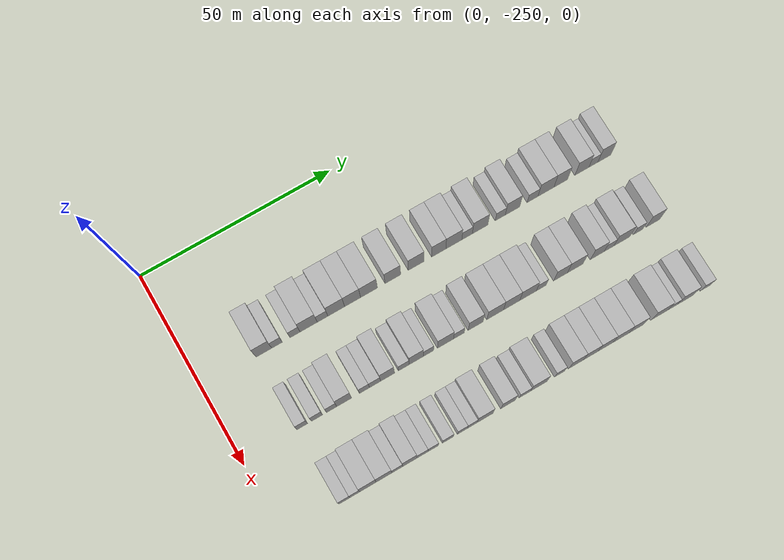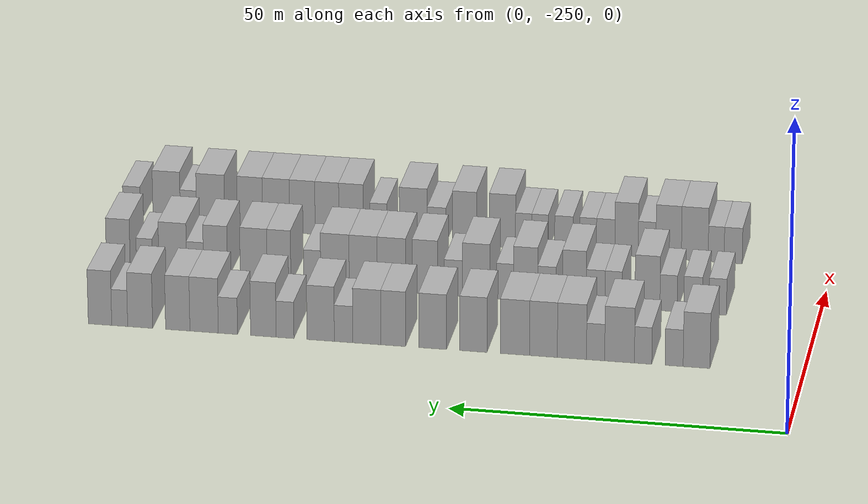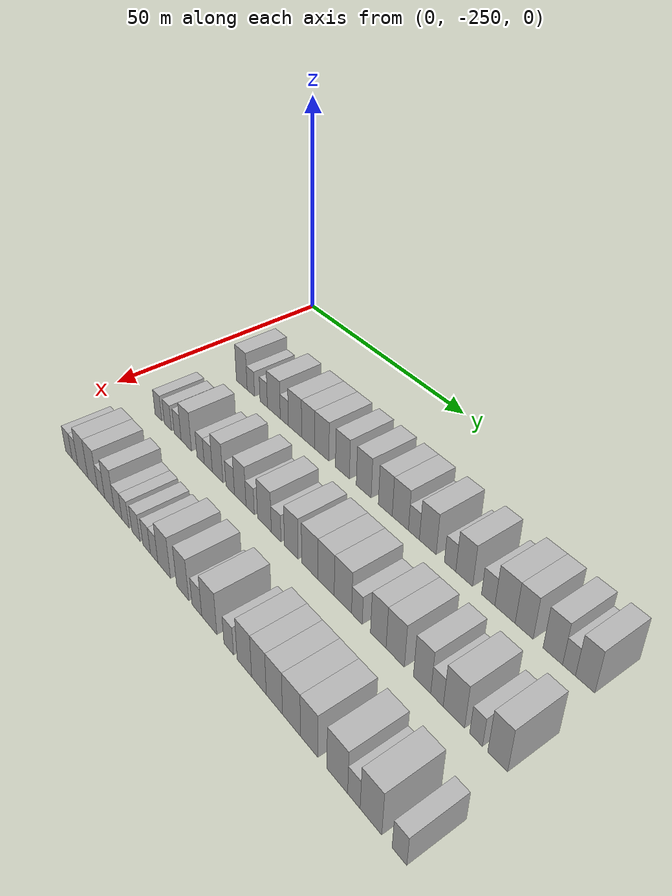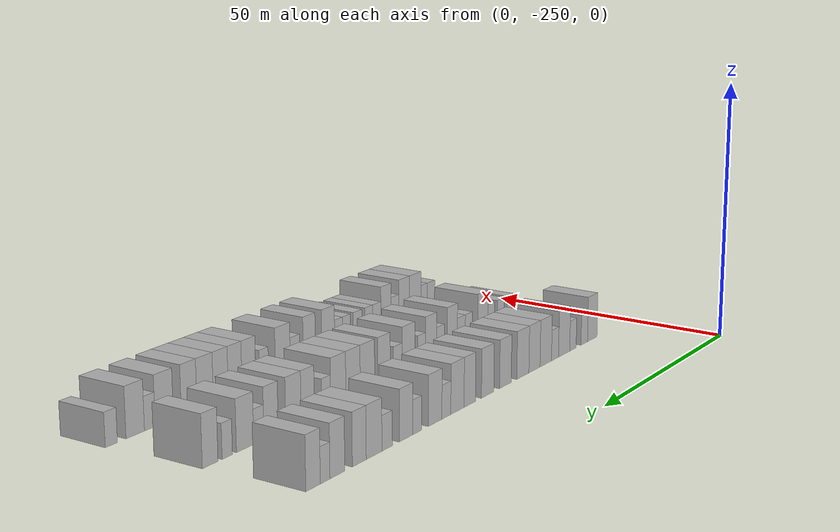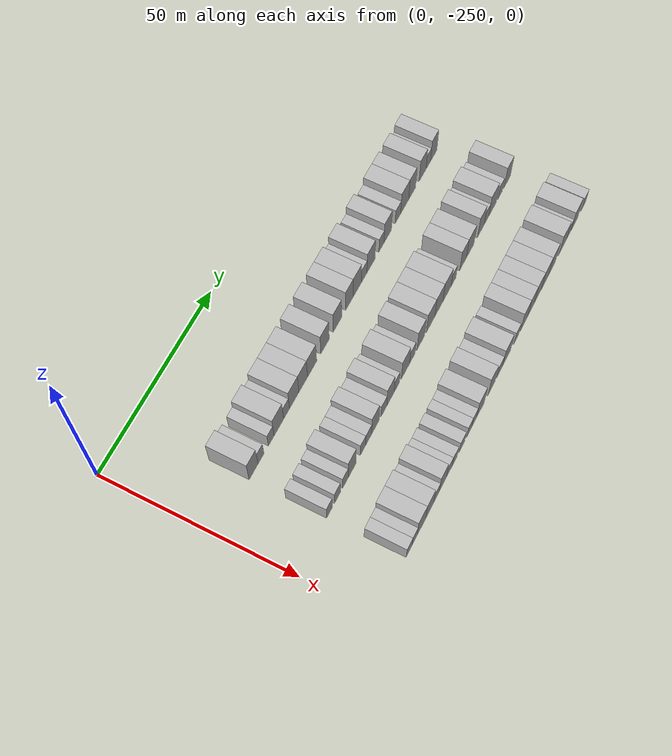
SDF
<sdf version="1.6">
 <world name="default">
  <model name="building_1">
   <static>1</static>
   <pose>25.0000 -233.9836 0 0.000000 0.000000 0.000000</pose>
   <link name="link">
    <pose>0 0 4.50 0 0 0</pose>
    <collision name="collision"><geometry><box><size>10.0000 4.0328 9.0000</size></box></geometry></collision>
    <visual name="visual">
     <cast_shadows>0</cast_shadows>
     <geometry><box><size>10.0000 4.0328 9.0000</size></box></geometry>
     <material>
      <script>
       <uri>model://HANNAS_wall/materials/scripts</uri>
       <uri>model://HANNAS_wall/materials/textures</uri>
       <name>vrc/HANNAS_wall</name>
      </script>
     </material>
    </visual>
   </link>
  </model>
  <model name="building_2">
   <static>1</static>
   <pose>25.0000 -230.6096 0 0.000000 0.000000 0.000000</pose>
   <link name="link">
    <pose>0 0 3.00 0 0 0</pose>
    <collision name="collision"><geometry><box><size>10.0000 2.7152 6.0000</size></box></geometry></collision>
    <visual name="visual">
     <cast_shadows>0</cast_shadows>
     <geometry><box><size>10.0000 2.7152 6.0000</size></box></geometry>
     <material>
      <script>
       <uri>model://HANNAS_wall/materials/scripts</uri>
       <uri>model://HANNAS_wall/materials/textures</uri>
       <name>vrc/HANNAS_wall</name>
      </script>
     </material>
    </visual>
   </link>
  </model>
  <model name="building_3">
   <static>1</static>
   <pose>25.0000 -225.9464 0 0.000000 0.000000 0.000000</pose>
   <link name="link">
    <pose>0 0 3.00 0 0 0</pose>
    <collision name="collision"><geometry><box><size>10.0000 2.6112 6.0000</size></box></geometry></collision>
    <visual name="visual">
     <cast_shadows>0</cast_shadows>
     <geometry><box><size>10.0000 2.6112 6.0000</size></box></geometry>
     <material>
      <script>
       <uri>model://HANNAS_wall/materials/scripts</uri>
       <uri>model://HANNAS_wall/materials/textures</uri>
       <name>vrc/HANNAS_wall</name>
      </script>
     </material>
    </visual>
   </link>
  </model>
  <model name="building_4">
   <static>1</static>
   <pose>25.0000 -222.4008 0 0.000000 0.000000 0.000000</pose>
   <link name="link">
    <pose>0 0 4.50 0 0 0</pose>
    <collision name="collision"><geometry><box><size>10.0000 4.4799 9.0000</size></box></geometry></collision>
    <visual name="visual">
     <cast_shadows>0</cast_shadows>
     <geometry><box><size>10.0000 4.4799 9.0000</size></box></geometry>
     <material>
      <script>
       <uri>model://HANNAS_wall/materials/scripts</uri>
       <uri>model://HANNAS_wall/materials/textures</uri>
       <name>vrc/HANNAS_wall</name>
      </script>
     </material>
    </visual>
   </link>
  </model>
  <model name="building_5">
   <static>1</static>
   <pose>25.0000 -218.7899 0 0.000000 0.000000 0.000000</pose>
   <link name="link">
    <pose>0 0 3.00 0 0 0</pose>
    <collision name="collision"><geometry><box><size>10.0000 2.7420 6.0000</size></box></geometry></collision>
    <visual name="visual">
     <cast_shadows>0</cast_shadows>
     <geometry><box><size>10.0000 2.7420 6.0000</size></box></geometry>
     <material>
      <script>
       <uri>model://HANNAS_wall/materials/scripts</uri>
       <uri>model://HANNAS_wall/materials/textures</uri>
       <name>vrc/HANNAS_wall</name>
      </script>
     </material>
    </visual>
   </link>
  </model>
  <model name="building_6">
   <static>1</static>
   <pose>25.0000 -215.2181 0 0.000000 0.000000 0.000000</pose>
   <link name="link">
    <pose>0 0 4.50 0 0 0</pose>
    <collision name="collision"><geometry><box><size>10.0000 4.4015 9.0000</size></box></geometry></collision>
    <visual name="visual">
     <cast_shadows>0</cast_shadows>
     <geometry><box><size>10.0000 4.4015 9.0000</size></box></geometry>
     <material>
      <script>
       <uri>model://HANNAS_wall/materials/scripts</uri>
       <uri>model://HANNAS_wall/materials/textures</uri>
       <name>vrc/HANNAS_wall</name>
      </script>
     </material>
    </visual>
   </link>
  </model>
  <model name="building_7">
   <static>1</static>
   <pose>25.0000 -210.9202 0 0.000000 0.000000 0.000000</pose>
   <link name="link">
    <pose>0 0 4.50 0 0 0</pose>
    <collision name="collision"><geometry><box><size>10.0000 4.1942 9.0000</size></box></geometry></collision>
    <visual name="visual">
     <cast_shadows>0</cast_shadows>
     <geometry><box><size>10.0000 4.1942 9.0000</size></box></geometry>
     <material>
      <script>
       <uri>model://HANNAS_wall/materials/scripts</uri>
       <uri>model://HANNAS_wall/materials/textures</uri>
       <name>vrc/HANNAS_wall</name>
      </script>
     </material>
    </visual>
   </link>
  </model>
  <model name="building_8">
   <static>1</static>
   <pose>25.0000 -206.6059 0 0.000000 0.000000 0.000000</pose>
   <link name="link">
    <pose>0 0 4.50 0 0 0</pose>
    <collision name="collision"><geometry><box><size>10.0000 4.4343 9.0000</size></box></geometry></collision>
    <visual name="visual">
     <cast_shadows>0</cast_shadows>
     <geometry><box><size>10.0000 4.4343 9.0000</size></box></geometry>
     <material>
      <script>
       <uri>model://HANNAS_wall/materials/scripts</uri>
       <uri>model://HANNAS_wall/materials/textures</uri>
       <name>vrc/HANNAS_wall</name>
      </script>
     </material>
    </visual>
   </link>
  </model>
  <model name="building_9">
   <static>1</static>
   <pose>25.0000 -200.3135 0 0.000000 0.000000 0.000000</pose>
   <link name="link">
    <pose>0 0 4.50 0 0 0</pose>
    <collision name="collision"><geometry><box><size>10.0000 4.1505 9.0000</size></box></geometry></collision>
    <visual name="visual">
     <cast_shadows>0</cast_shadows>
     <geometry><box><size>10.0000 4.1505 9.0000</size></box></geometry>
     <material>
      <script>
       <uri>model://HANNAS_wall/materials/scripts</uri>
       <uri>model://HANNAS_wall/materials/textures</uri>
       <name>vrc/HANNAS_wall</name>
      </script>
     </material>
    </visual>
   </link>
  </model>
  <model name="building_10">
   <static>1</static>
   <pose>25.0000 -194.1233 0 0.000000 0.000000 0.000000</pose>
   <link name="link">
    <pose>0 0 4.50 0 0 0</pose>
    <collision name="collision"><geometry><box><size>10.0000 4.2298 9.0000</size></box></geometry></collision>
    <visual name="visual">
     <cast_shadows>0</cast_shadows>
     <geometry><box><size>10.0000 4.2298 9.0000</size></box></geometry>
     <material>
      <script>
       <uri>model://HANNAS_wall/materials/scripts</uri>
       <uri>model://HANNAS_wall/materials/textures</uri>
       <name>vrc/HANNAS_wall</name>
      </script>
     </material>
    </visual>
   </link>
  </model>
  <model name="building_11">
   <static>1</static>
   <pose>25.0000 -188.1215 0 0.000000 0.000000 0.000000</pose>
   <link name="link">
    <pose>0 0 4.50 0 0 0</pose>
    <collision name="collision"><geometry><box><size>10.0000 3.7738 9.0000</size></box></geometry></collision>
    <visual name="visual">
     <cast_shadows>0</cast_shadows>
     <geometry><box><size>10.0000 3.7738 9.0000</size></box></geometry>
     <material>
      <script>
       <uri>model://HANNAS_wall/materials/scripts</uri>
       <uri>model://HANNAS_wall/materials/textures</uri>
       <name>vrc/HANNAS_wall</name>
      </script>
     </material>
    </visual>
   </link>
  </model>
  <model name="building_12">
   <static>1</static>
   <pose>25.0000 -184.0961 0 0.000000 0.000000 0.000000</pose>
   <link name="link">
    <pose>0 0 4.50 0 0 0</pose>
    <collision name="collision"><geometry><box><size>10.0000 4.2769 9.0000</size></box></geometry></collision>
    <visual name="visual">
     <cast_shadows>0</cast_shadows>
     <geometry><box><size>10.0000 4.2769 9.0000</size></box></geometry>
     <material>
      <script>
       <uri>model://HANNAS_wall/materials/scripts</uri>
       <uri>model://HANNAS_wall/materials/textures</uri>
       <name>vrc/HANNAS_wall</name>
      </script>
     </material>
    </visual>
   </link>
  </model>
  <model name="building_13">
   <static>1</static>
   <pose>25.0000 -180.5495 0 0.000000 0.000000 0.000000</pose>
   <link name="link">
    <pose>0 0 3.00 0 0 0</pose>
    <collision name="collision"><geometry><box><size>10.0000 2.8164 6.0000</size></box></geometry></collision>
    <visual name="visual">
     <cast_shadows>0</cast_shadows>
     <geometry><box><size>10.0000 2.8164 6.0000</size></box></geometry>
     <material>
      <script>
       <uri>model://HANNAS_wall/materials/scripts</uri>
       <uri>model://HANNAS_wall/materials/textures</uri>
       <name>vrc/HANNAS_wall</name>
      </script>
     </material>
    </visual>
   </link>
  </model>
  <model name="building_14">
   <static>1</static>
   <pose>25.0000 -177.0517 0 0.000000 0.000000 0.000000</pose>
   <link name="link">
    <pose>0 0 4.50 0 0 0</pose>
    <collision name="collision"><geometry><box><size>10.0000 4.1793 9.0000</size></box></geometry></collision>
    <visual name="visual">
     <cast_shadows>0</cast_shadows>
     <geometry><box><size>10.0000 4.1793 9.0000</size></box></geometry>
     <material>
      <script>
       <uri>model://HANNAS_wall/materials/scripts</uri>
       <uri>model://HANNAS_wall/materials/textures</uri>
       <name>vrc/HANNAS_wall</name>
      </script>
     </material>
    </visual>
   </link>
  </model>
  <model name="building_15">
   <static>1</static>
   <pose>25.0000 -171.6035 0 0.000000 0.000000 0.000000</pose>
   <link name="link">
    <pose>0 0 3.00 0 0 0</pose>
    <collision name="collision"><geometry><box><size>10.0000 2.7170 6.0000</size></box></geometry></collision>
    <visual name="visual">
     <cast_shadows>0</cast_shadows>
     <geometry><box><size>10.0000 2.7170 6.0000</size></box></geometry>
     <material>
      <script>
       <uri>model://HANNAS_wall/materials/scripts</uri>
       <uri>model://HANNAS_wall/materials/textures</uri>
       <name>vrc/HANNAS_wall</name>
      </script>
     </material>
    </visual>
   </link>
  </model>
  <model name="building_16">
   <static>1</static>
   <pose>25.0000 -168.2817 0 0.000000 0.000000 0.000000</pose>
   <link name="link">
    <pose>0 0 4.50 0 0 0</pose>
    <collision name="collision"><geometry><box><size>10.0000 3.9265 9.0000</size></box></geometry></collision>
    <visual name="visual">
     <cast_shadows>0</cast_shadows>
     <geometry><box><size>10.0000 3.9265 9.0000</size></box></geometry>
     <material>
      <script>
       <uri>model://HANNAS_wall/materials/scripts</uri>
       <uri>model://HANNAS_wall/materials/textures</uri>
       <name>vrc/HANNAS_wall</name>
      </script>
     </material>
    </visual>
   </link>
  </model>
  <model name="building_17">
   <static>1</static>
   <pose>25.0000 -162.8379 0 0.000000 0.000000 0.000000</pose>
   <link name="link">
    <pose>0 0 3.00 0 0 0</pose>
    <collision name="collision"><geometry><box><size>10.0000 2.9611 6.0000</size></box></geometry></collision>
    <visual name="visual">
     <cast_shadows>0</cast_shadows>
     <geometry><box><size>10.0000 2.9611 6.0000</size></box></geometry>
     <material>
      <script>
       <uri>model://HANNAS_wall/materials/scripts</uri>
       <uri>model://HANNAS_wall/materials/textures</uri>
       <name>vrc/HANNAS_wall</name>
      </script>
     </material>
    </visual>
   </link>
  </model>
  <model name="building_18">
   <static>1</static>
   <pose>25.0000 -159.1776 0 0.000000 0.000000 0.000000</pose>
   <link name="link">
    <pose>0 0 4.50 0 0 0</pose>
    <collision name="collision"><geometry><box><size>10.0000 4.3594 9.0000</size></box></geometry></collision>
    <visual name="visual">
     <cast_shadows>0</cast_shadows>
     <geometry><box><size>10.0000 4.3594 9.0000</size></box></geometry>
     <material>
      <script>
       <uri>model://HANNAS_wall/materials/scripts</uri>
       <uri>model://HANNAS_wall/materials/textures</uri>
       <name>vrc/HANNAS_wall</name>
      </script>
     </material>
    </visual>
   </link>
  </model>
  <model name="building_19">
   <static>1</static>
   <pose>25.0000 -155.1278 0 0.000000 0.000000 0.000000</pose>
   <link name="link">
    <pose>0 0 4.50 0 0 0</pose>
    <collision name="collision"><geometry><box><size>10.0000 3.7403 9.0000</size></box></geometry></collision>
    <visual name="visual">
     <cast_shadows>0</cast_shadows>
     <geometry><box><size>10.0000 3.7403 9.0000</size></box></geometry>
     <material>
      <script>
       <uri>model://HANNAS_wall/materials/scripts</uri>
       <uri>model://HANNAS_wall/materials/textures</uri>
       <name>vrc/HANNAS_wall</name>
      </script>
     </material>
    </visual>
   </link>
  </model>
  <model name="building_20">
   <static>1</static>
   <pose>25.0000 -149.3314 0 0.000000 0.000000 0.000000</pose>
   <link name="link">
    <pose>0 0 4.50 0 0 0</pose>
    <collision name="collision"><geometry><box><size>10.0000 3.8524 9.0000</size></box></geometry></collision>
    <visual name="visual">
     <cast_shadows>0</cast_shadows>
     <geometry><box><size>10.0000 3.8524 9.0000</size></box></geometry>
     <material>
      <script>
       <uri>model://HANNAS_wall/materials/scripts</uri>
       <uri>model://HANNAS_wall/materials/textures</uri>
       <name>vrc/HANNAS_wall</name>
      </script>
     </material>
    </visual>
   </link>
  </model>
  <model name="building_21">
   <static>1</static>
   <pose>25.0000 -146.1760 0 0.000000 0.000000 0.000000</pose>
   <link name="link">
    <pose>0 0 3.00 0 0 0</pose>
    <collision name="collision"><geometry><box><size>10.0000 2.4586 6.0000</size></box></geometry></collision>
    <visual name="visual">
     <cast_shadows>0</cast_shadows>
     <geometry><box><size>10.0000 2.4586 6.0000</size></box></geometry>
     <material>
      <script>
       <uri>model://HANNAS_wall/materials/scripts</uri>
       <uri>model://HANNAS_wall/materials/textures</uri>
       <name>vrc/HANNAS_wall</name>
      </script>
     </material>
    </visual>
   </link>
  </model>
  <model name="building_22">
   <static>1</static>
   <pose>25.0000 -143.1397 0 0.000000 0.000000 0.000000</pose>
   <link name="link">
    <pose>0 0 4.50 0 0 0</pose>
    <collision name="collision"><geometry><box><size>10.0000 3.6139 9.0000</size></box></geometry></collision>
    <visual name="visual">
     <cast_shadows>0</cast_shadows>
     <geometry><box><size>10.0000 3.6139 9.0000</size></box></geometry>
     <material>
      <script>
       <uri>model://HANNAS_wall/materials/scripts</uri>
       <uri>model://HANNAS_wall/materials/textures</uri>
       <name>vrc/HANNAS_wall</name>
      </script>
     </material>
    </visual>
   </link>
  </model>
  <model name="building_124">
   <static>1</static>
   <pose>44.0000 -234.6560 0 0.000000 0.000000 0.000000</pose>
   <link name="link">
    <pose>0 0 3.00 0 0 0</pose>
    <collision name="collision"><geometry><box><size>10.0000 2.6880 6.0000</size></box></geometry></collision>
    <visual name="visual">
     <cast_shadows>0</cast_shadows>
     <geometry><box><size>10.0000 2.6880 6.0000</size></box></geometry>
     <material>
      <script>
       <uri>model://HANNAS_wall/materials/scripts</uri>
       <uri>model://HANNAS_wall/materials/textures</uri>
       <name>vrc/HANNAS_wall</name>
      </script>
     </material>
    </visual>
   </link>
  </model>
  <model name="building_125">
   <static>1</static>
   <pose>44.0000 -230.8934 0 0.000000 0.000000 0.000000</pose>
   <link name="link">
    <pose>0 0 3.00 0 0 0</pose>
    <collision name="collision"><geometry><box><size>10.0000 2.8372 6.0000</size></box></geometry></collision>
    <visual name="visual">
     <cast_shadows>0</cast_shadows>
     <geometry><box><size>10.0000 2.8372 6.0000</size></box></geometry>
     <material>
      <script>
       <uri>model://HANNAS_wall/materials/scripts</uri>
       <uri>model://HANNAS_wall/materials/textures</uri>
       <name>vrc/HANNAS_wall</name>
      </script>
     </material>
    </visual>
   </link>
  </model>
  <model name="building_126">
   <static>1</static>
   <pose>44.0000 -227.1511 0 0.000000 0.000000 0.000000</pose>
   <link name="link">
    <pose>0 0 3.00 0 0 0</pose>
    <collision name="collision"><geometry><box><size>10.0000 2.6474 6.0000</size></box></geometry></collision>
    <visual name="visual">
     <cast_shadows>0</cast_shadows>
     <geometry><box><size>10.0000 2.6474 6.0000</size></box></geometry>
     <material>
      <script>
       <uri>model://HANNAS_wall/materials/scripts</uri>
       <uri>model://HANNAS_wall/materials/textures</uri>
       <name>vrc/HANNAS_wall</name>
      </script>
     </material>
    </visual>
   </link>
  </model>
  <model name="building_127">
   <static>1</static>
   <pose>44.0000 -223.9081 0 0.000000 0.000000 0.000000</pose>
   <link name="link">
    <pose>0 0 4.50 0 0 0</pose>
    <collision name="collision"><geometry><box><size>10.0000 3.8386 9.0000</size></box></geometry></collision>
    <visual name="visual">
     <cast_shadows>0</cast_shadows>
     <geometry><box><size>10.0000 3.8386 9.0000</size></box></geometry>
     <material>
      <script>
       <uri>model://HANNAS_wall/materials/scripts</uri>
       <uri>model://HANNAS_wall/materials/textures</uri>
       <name>vrc/HANNAS_wall</name>
      </script>
     </material>
    </visual>
   </link>
  </model>
  <model name="building_128">
   <static>1</static>
   <pose>44.0000 -218.6937 0 0.000000 0.000000 0.000000</pose>
   <link name="link">
    <pose>0 0 3.00 0 0 0</pose>
    <collision name="collision"><geometry><box><size>10.0000 2.5903 6.0000</size></box></geometry></collision>
    <visual name="visual">
     <cast_shadows>0</cast_shadows>
     <geometry><box><size>10.0000 2.5903 6.0000</size></box></geometry>
     <material>
      <script>
       <uri>model://HANNAS_wall/materials/scripts</uri>
       <uri>model://HANNAS_wall/materials/textures</uri>
       <name>vrc/HANNAS_wall</name>
      </script>
     </material>
    </visual>
   </link>
  </model>
  <model name="building_129">
   <static>1</static>
   <pose>44.0000 -215.9642 0 0.000000 0.000000 0.000000</pose>
   <link name="link">
    <pose>0 0 3.00 0 0 0</pose>
    <collision name="collision"><geometry><box><size>10.0000 2.8687 6.0000</size></box></geometry></collision>
    <visual name="visual">
     <cast_shadows>0</cast_shadows>
     <geometry><box><size>10.0000 2.8687 6.0000</size></box></geometry>
     <material>
      <script>
       <uri>model://HANNAS_wall/materials/scripts</uri>
       <uri>model://HANNAS_wall/materials/textures</uri>
       <name>vrc/HANNAS_wall</name>
      </script>
     </material>
    </visual>
   </link>
  </model>
  <model name="building_130">
   <static>1</static>
   <pose>44.0000 -212.7077 0 0.000000 0.000000 0.000000</pose>
   <link name="link">
    <pose>0 0 4.50 0 0 0</pose>
    <collision name="collision"><geometry><box><size>10.0000 3.6442 9.0000</size></box></geometry></collision>
    <visual name="visual">
     <cast_shadows>0</cast_shadows>
     <geometry><box><size>10.0000 3.6442 9.0000</size></box></geometry>
     <material>
      <script>
       <uri>model://HANNAS_wall/materials/scripts</uri>
       <uri>model://HANNAS_wall/materials/textures</uri>
       <name>vrc/HANNAS_wall</name>
      </script>
     </material>
    </visual>
   </link>
  </model>
  <model name="building_131">
   <static>1</static>
   <pose>44.0000 -208.4676 0 0.000000 0.000000 0.000000</pose>
   <link name="link">
    <pose>0 0 3.00 0 0 0</pose>
    <collision name="collision"><geometry><box><size>10.0000 2.8359 6.0000</size></box></geometry></collision>
    <visual name="visual">
     <cast_shadows>0</cast_shadows>
     <geometry><box><size>10.0000 2.8359 6.0000</size></box></geometry>
     <material>
      <script>
       <uri>model://HANNAS_wall/materials/scripts</uri>
       <uri>model://HANNAS_wall/materials/textures</uri>
       <name>vrc/HANNAS_wall</name>
      </script>
     </material>
    </visual>
   </link>
  </model>
  <model name="building_132">
   <static>1</static>
   <pose>44.0000 -205.1764 0 0.000000 0.000000 0.000000</pose>
   <link name="link">
    <pose>0 0 4.50 0 0 0</pose>
    <collision name="collision"><geometry><box><size>10.0000 3.7465 9.0000</size></box></geometry></collision>
    <visual name="visual">
     <cast_shadows>0</cast_shadows>
     <geometry><box><size>10.0000 3.7465 9.0000</size></box></geometry>
     <material>
      <script>
       <uri>model://HANNAS_wall/materials/scripts</uri>
       <uri>model://HANNAS_wall/materials/textures</uri>
       <name>vrc/HANNAS_wall</name>
      </script>
     </material>
    </visual>
   </link>
  </model>
  <model name="building_133">
   <static>1</static>
   <pose>44.0000 -201.9931 0 0.000000 0.000000 0.000000</pose>
   <link name="link">
    <pose>0 0 3.00 0 0 0</pose>
    <collision name="collision"><geometry><box><size>10.0000 2.6202 6.0000</size></box></geometry></collision>
    <visual name="visual">
     <cast_shadows>0</cast_shadows>
     <geometry><box><size>10.0000 2.6202 6.0000</size></box></geometry>
     <material>
      <script>
       <uri>model://HANNAS_wall/materials/scripts</uri>
       <uri>model://HANNAS_wall/materials/textures</uri>
       <name>vrc/HANNAS_wall</name>
      </script>
     </material>
    </visual>
   </link>
  </model>
  <model name="building_134">
   <static>1</static>
   <pose>44.0000 -197.5718 0 0.000000 0.000000 0.000000</pose>
   <link name="link">
    <pose>0 0 4.50 0 0 0</pose>
    <collision name="collision"><geometry><box><size>10.0000 4.2224 9.0000</size></box></geometry></collision>
    <visual name="visual">
     <cast_shadows>0</cast_shadows>
     <geometry><box><size>10.0000 4.2224 9.0000</size></box></geometry>
     <material>
      <script>
       <uri>model://HANNAS_wall/materials/scripts</uri>
       <uri>model://HANNAS_wall/materials/textures</uri>
       <name>vrc/HANNAS_wall</name>
      </script>
     </material>
    </visual>
   </link>
  </model>
  <model name="building_135">
   <static>1</static>
   <pose>44.0000 -194.0302 0 0.000000 0.000000 0.000000</pose>
   <link name="link">
    <pose>0 0 3.00 0 0 0</pose>
    <collision name="collision"><geometry><box><size>10.0000 2.8608 6.0000</size></box></geometry></collision>
    <visual name="visual">
     <cast_shadows>0</cast_shadows>
     <geometry><box><size>10.0000 2.8608 6.0000</size></box></geometry>
     <material>
      <script>
       <uri>model://HANNAS_wall/materials/scripts</uri>
       <uri>model://HANNAS_wall/materials/textures</uri>
       <name>vrc/HANNAS_wall</name>
      </script>
     </material>
    </visual>
   </link>
  </model>
  <model name="building_136">
   <static>1</static>
   <pose>44.0000 -189.6367 0 0.000000 0.000000 0.000000</pose>
   <link name="link">
    <pose>0 0 4.50 0 0 0</pose>
    <collision name="collision"><geometry><box><size>10.0000 3.9262 9.0000</size></box></geometry></collision>
    <visual name="visual">
     <cast_shadows>0</cast_shadows>
     <geometry><box><size>10.0000 3.9262 9.0000</size></box></geometry>
     <material>
      <script>
       <uri>model://HANNAS_wall/materials/scripts</uri>
       <uri>model://HANNAS_wall/materials/textures</uri>
       <name>vrc/HANNAS_wall</name>
      </script>
     </material>
    </visual>
   </link>
  </model>
  <model name="building_137">
   <static>1</static>
   <pose>44.0000 -184.4446 0 0.000000 0.000000 0.000000</pose>
   <link name="link">
    <pose>0 0 4.50 0 0 0</pose>
    <collision name="collision"><geometry><box><size>10.0000 4.4580 9.0000</size></box></geometry></collision>
    <visual name="visual">
     <cast_shadows>0</cast_shadows>
     <geometry><box><size>10.0000 4.4580 9.0000</size></box></geometry>
     <material>
      <script>
       <uri>model://HANNAS_wall/materials/scripts</uri>
       <uri>model://HANNAS_wall/materials/textures</uri>
       <name>vrc/HANNAS_wall</name>
      </script>
     </material>
    </visual>
   </link>
  </model>
  <model name="building_138">
   <static>1</static>
   <pose>44.0000 -180.0533 0 0.000000 0.000000 0.000000</pose>
   <link name="link">
    <pose>0 0 4.50 0 0 0</pose>
    <collision name="collision"><geometry><box><size>10.0000 4.3246 9.0000</size></box></geometry></collision>
    <visual name="visual">
     <cast_shadows>0</cast_shadows>
     <geometry><box><size>10.0000 4.3246 9.0000</size></box></geometry>
     <material>
      <script>
       <uri>model://HANNAS_wall/materials/scripts</uri>
       <uri>model://HANNAS_wall/materials/textures</uri>
       <name>vrc/HANNAS_wall</name>
      </script>
     </material>
    </visual>
   </link>
  </model>
  <model name="building_139">
   <static>1</static>
   <pose>44.0000 -175.6700 0 0.000000 0.000000 0.000000</pose>
   <link name="link">
    <pose>0 0 4.50 0 0 0</pose>
    <collision name="collision"><geometry><box><size>10.0000 4.4419 9.0000</size></box></geometry></collision>
    <visual name="visual">
     <cast_shadows>0</cast_shadows>
     <geometry><box><size>10.0000 4.4419 9.0000</size></box></geometry>
     <material>
      <script>
       <uri>model://HANNAS_wall/materials/scripts</uri>
       <uri>model://HANNAS_wall/materials/textures</uri>
       <name>vrc/HANNAS_wall</name>
      </script>
     </material>
    </visual>
   </link>
  </model>
  <model name="building_140">
   <static>1</static>
   <pose>44.0000 -172.1251 0 0.000000 0.000000 0.000000</pose>
   <link name="link">
    <pose>0 0 3.00 0 0 0</pose>
    <collision name="collision"><geometry><box><size>10.0000 2.6479 6.0000</size></box></geometry></collision>
    <visual name="visual">
     <cast_shadows>0</cast_shadows>
     <geometry><box><size>10.0000 2.6479 6.0000</size></box></geometry>
     <material>
      <script>
       <uri>model://HANNAS_wall/materials/scripts</uri>
       <uri>model://HANNAS_wall/materials/textures</uri>
       <name>vrc/HANNAS_wall</name>
      </script>
     </material>
    </visual>
   </link>
  </model>
  <model name="building_141">
   <static>1</static>
   <pose>44.0000 -166.9537 0 0.000000 0.000000 0.000000</pose>
   <link name="link">
    <pose>0 0 4.50 0 0 0</pose>
    <collision name="collision"><geometry><box><size>10.0000 3.6950 9.0000</size></box></geometry></collision>
    <visual name="visual">
     <cast_shadows>0</cast_shadows>
     <geometry><box><size>10.0000 3.6950 9.0000</size></box></geometry>
     <material>
      <script>
       <uri>model://HANNAS_wall/materials/scripts</uri>
       <uri>model://HANNAS_wall/materials/textures</uri>
       <name>vrc/HANNAS_wall</name>
      </script>
     </material>
    </visual>
   </link>
  </model>
  <model name="building_142">
   <static>1</static>
   <pose>44.0000 -163.0066 0 0.000000 0.000000 0.000000</pose>
   <link name="link">
    <pose>0 0 4.50 0 0 0</pose>
    <collision name="collision"><geometry><box><size>10.0000 4.1993 9.0000</size></box></geometry></collision>
    <visual name="visual">
     <cast_shadows>0</cast_shadows>
     <geometry><box><size>10.0000 4.1993 9.0000</size></box></geometry>
     <material>
      <script>
       <uri>model://HANNAS_wall/materials/scripts</uri>
       <uri>model://HANNAS_wall/materials/textures</uri>
       <name>vrc/HANNAS_wall</name>
      </script>
     </material>
    </visual>
   </link>
  </model>
  <model name="building_143">
   <static>1</static>
   <pose>44.0000 -157.0333 0 0.000000 0.000000 0.000000</pose>
   <link name="link">
    <pose>0 0 4.50 0 0 0</pose>
    <collision name="collision"><geometry><box><size>10.0000 3.7471 9.0000</size></box></geometry></collision>
    <visual name="visual">
     <cast_shadows>0</cast_shadows>
     <geometry><box><size>10.0000 3.7471 9.0000</size></box></geometry>
     <material>
      <script>
       <uri>model://HANNAS_wall/materials/scripts</uri>
       <uri>model://HANNAS_wall/materials/textures</uri>
       <name>vrc/HANNAS_wall</name>
      </script>
     </material>
    </visual>
   </link>
  </model>
  <model name="building_144">
   <static>1</static>
   <pose>44.0000 -153.8432 0 0.000000 0.000000 0.000000</pose>
   <link name="link">
    <pose>0 0 3.00 0 0 0</pose>
    <collision name="collision"><geometry><box><size>10.0000 2.6332 6.0000</size></box></geometry></collision>
    <visual name="visual">
     <cast_shadows>0</cast_shadows>
     <geometry><box><size>10.0000 2.6332 6.0000</size></box></geometry>
     <material>
      <script>
       <uri>model://HANNAS_wall/materials/scripts</uri>
       <uri>model://HANNAS_wall/materials/textures</uri>
       <name>vrc/HANNAS_wall</name>
      </script>
     </material>
    </visual>
   </link>
  </model>
  <model name="building_145">
   <static>1</static>
   <pose>44.0000 -150.3522 0 0.000000 0.000000 0.000000</pose>
   <link name="link">
    <pose>0 0 4.50 0 0 0</pose>
    <collision name="collision"><geometry><box><size>10.0000 4.3489 9.0000</size></box></geometry></collision>
    <visual name="visual">
     <cast_shadows>0</cast_shadows>
     <geometry><box><size>10.0000 4.3489 9.0000</size></box></geometry>
     <material>
      <script>
       <uri>model://HANNAS_wall/materials/scripts</uri>
       <uri>model://HANNAS_wall/materials/textures</uri>
       <name>vrc/HANNAS_wall</name>
      </script>
     </material>
    </visual>
   </link>
  </model>
  <model name="building_146">
   <static>1</static>
   <pose>44.0000 -145.9190 0 0.000000 0.000000 0.000000</pose>
   <link name="link">
    <pose>0 0 3.00 0 0 0</pose>
    <collision name="collision"><geometry><box><size>10.0000 2.5176 6.0000</size></box></geometry></collision>
    <visual name="visual">
     <cast_shadows>0</cast_shadows>
     <geometry><box><size>10.0000 2.5176 6.0000</size></box></geometry>
     <material>
      <script>
       <uri>model://HANNAS_wall/materials/scripts</uri>
       <uri>model://HANNAS_wall/materials/textures</uri>
       <name>vrc/HANNAS_wall</name>
      </script>
     </material>
    </visual>
   </link>
  </model>
  <model name="building_147">
   <static>1</static>
   <pose>44.0000 -141.7962 0 0.000000 0.000000 0.000000</pose>
   <link name="link">
    <pose>0 0 4.50 0 0 0</pose>
    <collision name="collision"><geometry><box><size>10.0000 3.7279 9.0000</size></box></geometry></collision>
    <visual name="visual">
     <cast_shadows>0</cast_shadows>
     <geometry><box><size>10.0000 3.7279 9.0000</size></box></geometry>
     <material>
      <script>
       <uri>model://HANNAS_wall/materials/scripts</uri>
       <uri>model://HANNAS_wall/materials/textures</uri>
       <name>vrc/HANNAS_wall</name>
      </script>
     </material>
    </visual>
   </link>
  </model>
  <model name="building_245">
   <static>1</static>
   <pose>63.0000 -234.5922 0 0.000000 0.000000 0.000000</pose>
   <link name="link">
    <pose>0 0 3.00 0 0 0</pose>
    <collision name="collision"><geometry><box><size>10.0000 2.8156 6.0000</size></box></geometry></collision>
    <visual name="visual">
     <cast_shadows>0</cast_shadows>
     <geometry><box><size>10.0000 2.8156 6.0000</size></box></geometry>
     <material>
      <script>
       <uri>model://HANNAS_wall/materials/scripts</uri>
       <uri>model://HANNAS_wall/materials/textures</uri>
       <name>vrc/HANNAS_wall</name>
      </script>
     </material>
    </visual>
   </link>
  </model>
  <model name="building_246">
   <static>1</static>
   <pose>63.0000 -231.9451 0 0.000000 0.000000 0.000000</pose>
   <link name="link">
    <pose>0 0 3.00 0 0 0</pose>
    <collision name="collision"><geometry><box><size>10.0000 2.4787 6.0000</size></box></geometry></collision>
    <visual name="visual">
     <cast_shadows>0</cast_shadows>
     <geometry><box><size>10.0000 2.4787 6.0000</size></box></geometry>
     <material>
      <script>
       <uri>model://HANNAS_wall/materials/scripts</uri>
       <uri>model://HANNAS_wall/materials/textures</uri>
       <name>vrc/HANNAS_wall</name>
      </script>
     </material>
    </visual>
   </link>
  </model>
  <model name="building_247">
   <static>1</static>
   <pose>63.0000 -228.6180 0 0.000000 0.000000 0.000000</pose>
   <link name="link">
    <pose>0 0 4.50 0 0 0</pose>
    <collision name="collision"><geometry><box><size>10.0000 4.1755 9.0000</size></box></geometry></collision>
    <visual name="visual">
     <cast_shadows>0</cast_shadows>
     <geometry><box><size>10.0000 4.1755 9.0000</size></box></geometry>
     <material>
      <script>
       <uri>model://HANNAS_wall/materials/scripts</uri>
       <uri>model://HANNAS_wall/materials/textures</uri>
       <name>vrc/HANNAS_wall</name>
      </script>
     </material>
    </visual>
   </link>
  </model>
  <model name="building_248">
   <static>1</static>
   <pose>63.0000 -224.5358 0 0.000000 0.000000 0.000000</pose>
   <link name="link">
    <pose>0 0 4.50 0 0 0</pose>
    <collision name="collision"><geometry><box><size>10.0000 3.9888 9.0000</size></box></geometry></collision>
    <visual name="visual">
     <cast_shadows>0</cast_shadows>
     <geometry><box><size>10.0000 3.9888 9.0000</size></box></geometry>
     <material>
      <script>
       <uri>model://HANNAS_wall/materials/scripts</uri>
       <uri>model://HANNAS_wall/materials/textures</uri>
       <name>vrc/HANNAS_wall</name>
      </script>
     </material>
    </visual>
   </link>
  </model>
  <model name="building_249">
   <static>1</static>
   <pose>63.0000 -221.1683 0 0.000000 0.000000 0.000000</pose>
   <link name="link">
    <pose>0 0 3.00 0 0 0</pose>
    <collision name="collision"><geometry><box><size>10.0000 2.7462 6.0000</size></box></geometry></collision>
    <visual name="visual">
     <cast_shadows>0</cast_shadows>
     <geometry><box><size>10.0000 2.7462 6.0000</size></box></geometry>
     <material>
      <script>
       <uri>model://HANNAS_wall/materials/scripts</uri>
       <uri>model://HANNAS_wall/materials/textures</uri>
       <name>vrc/HANNAS_wall</name>
      </script>
     </material>
    </visual>
   </link>
  </model>
  <model name="building_250">
   <static>1</static>
   <pose>63.0000 -217.9680 0 0.000000 0.000000 0.000000</pose>
   <link name="link">
    <pose>0 0 4.50 0 0 0</pose>
    <collision name="collision"><geometry><box><size>10.0000 3.6543 9.0000</size></box></geometry></collision>
    <visual name="visual">
     <cast_shadows>0</cast_shadows>
     <geometry><box><size>10.0000 3.6543 9.0000</size></box></geometry>
     <material>
      <script>
       <uri>model://HANNAS_wall/materials/scripts</uri>
       <uri>model://HANNAS_wall/materials/textures</uri>
       <name>vrc/HANNAS_wall</name>
      </script>
     </material>
    </visual>
   </link>
  </model>
  <model name="building_251">
   <static>1</static>
   <pose>63.0000 -214.7028 0 0.000000 0.000000 0.000000</pose>
   <link name="link">
    <pose>0 0 3.00 0 0 0</pose>
    <collision name="collision"><geometry><box><size>10.0000 2.8761 6.0000</size></box></geometry></collision>
    <visual name="visual">
     <cast_shadows>0</cast_shadows>
     <geometry><box><size>10.0000 2.8761 6.0000</size></box></geometry>
     <material>
      <script>
       <uri>model://HANNAS_wall/materials/scripts</uri>
       <uri>model://HANNAS_wall/materials/textures</uri>
       <name>vrc/HANNAS_wall</name>
      </script>
     </material>
    </visual>
   </link>
  </model>
  <model name="building_252">
   <static>1</static>
   <pose>63.0000 -211.9359 0 0.000000 0.000000 0.000000</pose>
   <link name="link">
    <pose>0 0 3.00 0 0 0</pose>
    <collision name="collision"><geometry><box><size>10.0000 2.6578 6.0000</size></box></geometry></collision>
    <visual name="visual">
     <cast_shadows>0</cast_shadows>
     <geometry><box><size>10.0000 2.6578 6.0000</size></box></geometry>
     <material>
      <script>
       <uri>model://HANNAS_wall/materials/scripts</uri>
       <uri>model://HANNAS_wall/materials/textures</uri>
       <name>vrc/HANNAS_wall</name>
      </script>
     </material>
    </visual>
   </link>
  </model>
  <model name="building_253">
   <static>1</static>
   <pose>63.0000 -208.1619 0 0.000000 0.000000 0.000000</pose>
   <link name="link">
    <pose>0 0 3.00 0 0 0</pose>
    <collision name="collision"><geometry><box><size>10.0000 2.8901 6.0000</size></box></geometry></collision>
    <visual name="visual">
     <cast_shadows>0</cast_shadows>
     <geometry><box><size>10.0000 2.8901 6.0000</size></box></geometry>
     <material>
      <script>
       <uri>model://HANNAS_wall/materials/scripts</uri>
       <uri>model://HANNAS_wall/materials/textures</uri>
       <name>vrc/HANNAS_wall</name>
      </script>
     </material>
    </visual>
   </link>
  </model>
  <model name="building_254">
   <static>1</static>
   <pose>63.0000 -204.4173 0 0.000000 0.000000 0.000000</pose>
   <link name="link">
    <pose>0 0 3.00 0 0 0</pose>
    <collision name="collision"><geometry><box><size>10.0000 2.5990 6.0000</size></box></geometry></collision>
    <visual name="visual">
     <cast_shadows>0</cast_shadows>
     <geometry><box><size>10.0000 2.5990 6.0000</size></box></geometry>
     <material>
      <script>
       <uri>model://HANNAS_wall/materials/scripts</uri>
       <uri>model://HANNAS_wall/materials/textures</uri>
       <name>vrc/HANNAS_wall</name>
      </script>
     </material>
    </visual>
   </link>
  </model>
  <model name="building_255">
   <static>1</static>
   <pose>63.0000 -201.8491 0 0.000000 0.000000 0.000000</pose>
   <link name="link">
    <pose>0 0 3.00 0 0 0</pose>
    <collision name="collision"><geometry><box><size>10.0000 2.5374 6.0000</size></box></geometry></collision>
    <visual name="visual">
     <cast_shadows>0</cast_shadows>
     <geometry><box><size>10.0000 2.5374 6.0000</size></box></geometry>
     <material>
      <script>
       <uri>model://HANNAS_wall/materials/scripts</uri>
       <uri>model://HANNAS_wall/materials/textures</uri>
       <name>vrc/HANNAS_wall</name>
      </script>
     </material>
    </visual>
   </link>
  </model>
  <model name="building_256">
   <static>1</static>
   <pose>63.0000 -198.5160 0 0.000000 0.000000 0.000000</pose>
   <link name="link">
    <pose>0 0 4.50 0 0 0</pose>
    <collision name="collision"><geometry><box><size>10.0000 4.1288 9.0000</size></box></geometry></collision>
    <visual name="visual">
     <cast_shadows>0</cast_shadows>
     <geometry><box><size>10.0000 4.1288 9.0000</size></box></geometry>
     <material>
      <script>
       <uri>model://HANNAS_wall/materials/scripts</uri>
       <uri>model://HANNAS_wall/materials/textures</uri>
       <name>vrc/HANNAS_wall</name>
      </script>
     </material>
    </visual>
   </link>
  </model>
  <model name="building_257">
   <static>1</static>
   <pose>63.0000 -192.5543 0 0.000000 0.000000 0.000000</pose>
   <link name="link">
    <pose>0 0 4.50 0 0 0</pose>
    <collision name="collision"><geometry><box><size>10.0000 3.7947 9.0000</size></box></geometry></collision>
    <visual name="visual">
     <cast_shadows>0</cast_shadows>
     <geometry><box><size>10.0000 3.7947 9.0000</size></box></geometry>
     <material>
      <script>
       <uri>model://HANNAS_wall/materials/scripts</uri>
       <uri>model://HANNAS_wall/materials/textures</uri>
       <name>vrc/HANNAS_wall</name>
      </script>
     </material>
    </visual>
   </link>
  </model>
  <model name="building_258">
   <static>1</static>
   <pose>63.0000 -188.1837 0 0.000000 0.000000 0.000000</pose>
   <link name="link">
    <pose>0 0 3.00 0 0 0</pose>
    <collision name="collision"><geometry><box><size>10.0000 2.9464 6.0000</size></box></geometry></collision>
    <visual name="visual">
     <cast_shadows>0</cast_shadows>
     <geometry><box><size>10.0000 2.9464 6.0000</size></box></geometry>
     <material>
      <script>
       <uri>model://HANNAS_wall/materials/scripts</uri>
       <uri>model://HANNAS_wall/materials/textures</uri>
       <name>vrc/HANNAS_wall</name>
      </script>
     </material>
    </visual>
   </link>
  </model>
  <model name="building_259">
   <static>1</static>
   <pose>63.0000 -184.5043 0 0.000000 0.000000 0.000000</pose>
   <link name="link">
    <pose>0 0 4.50 0 0 0</pose>
    <collision name="collision"><geometry><box><size>10.0000 4.4124 9.0000</size></box></geometry></collision>
    <visual name="visual">
     <cast_shadows>0</cast_shadows>
     <geometry><box><size>10.0000 4.4124 9.0000</size></box></geometry>
     <material>
      <script>
       <uri>model://HANNAS_wall/materials/scripts</uri>
       <uri>model://HANNAS_wall/materials/textures</uri>
       <name>vrc/HANNAS_wall</name>
      </script>
     </material>
    </visual>
   </link>
  </model>
  <model name="building_260">
   <static>1</static>
   <pose>63.0000 -178.9569 0 0.000000 0.000000 0.000000</pose>
   <link name="link">
    <pose>0 0 3.00 0 0 0</pose>
    <collision name="collision"><geometry><box><size>10.0000 2.6824 6.0000</size></box></geometry></collision>
    <visual name="visual">
     <cast_shadows>0</cast_shadows>
     <geometry><box><size>10.0000 2.6824 6.0000</size></box></geometry>
     <material>
      <script>
       <uri>model://HANNAS_wall/materials/scripts</uri>
       <uri>model://HANNAS_wall/materials/textures</uri>
       <name>vrc/HANNAS_wall</name>
      </script>
     </material>
    </visual>
   </link>
  </model>
  <model name="building_261">
   <static>1</static>
   <pose>63.0000 -174.6755 0 0.000000 0.000000 0.000000</pose>
   <link name="link">
    <pose>0 0 4.50 0 0 0</pose>
    <collision name="collision"><geometry><box><size>10.0000 3.8805 9.0000</size></box></geometry></collision>
    <visual name="visual">
     <cast_shadows>0</cast_shadows>
     <geometry><box><size>10.0000 3.8805 9.0000</size></box></geometry>
     <material>
      <script>
       <uri>model://HANNAS_wall/materials/scripts</uri>
       <uri>model://HANNAS_wall/materials/textures</uri>
       <name>vrc/HANNAS_wall</name>
      </script>
     </material>
    </visual>
   </link>
  </model>
  <model name="building_262">
   <static>1</static>
   <pose>63.0000 -170.8448 0 0.000000 0.000000 0.000000</pose>
   <link name="link">
    <pose>0 0 4.50 0 0 0</pose>
    <collision name="collision"><geometry><box><size>10.0000 3.7808 9.0000</size></box></geometry></collision>
    <visual name="visual">
     <cast_shadows>0</cast_shadows>
     <geometry><box><size>10.0000 3.7808 9.0000</size></box></geometry>
     <material>
      <script>
       <uri>model://HANNAS_wall/materials/scripts</uri>
       <uri>model://HANNAS_wall/materials/textures</uri>
       <name>vrc/HANNAS_wall</name>
      </script>
     </material>
    </visual>
   </link>
  </model>
  <model name="building_263">
   <static>1</static>
   <pose>63.0000 -166.9362 0 0.000000 0.000000 0.000000</pose>
   <link name="link">
    <pose>0 0 4.50 0 0 0</pose>
    <collision name="collision"><geometry><box><size>10.0000 4.0365 9.0000</size></box></geometry></collision>
    <visual name="visual">
     <cast_shadows>0</cast_shadows>
     <geometry><box><size>10.0000 4.0365 9.0000</size></box></geometry>
     <material>
      <script>
       <uri>model://HANNAS_wall/materials/scripts</uri>
       <uri>model://HANNAS_wall/materials/textures</uri>
       <name>vrc/HANNAS_wall</name>
      </script>
     </material>
    </visual>
   </link>
  </model>
  <model name="building_264">
   <static>1</static>
   <pose>63.0000 -162.7663 0 0.000000 0.000000 0.000000</pose>
   <link name="link">
    <pose>0 0 4.50 0 0 0</pose>
    <collision name="collision"><geometry><box><size>10.0000 4.3034 9.0000</size></box></geometry></collision>
    <visual name="visual">
     <cast_shadows>0</cast_shadows>
     <geometry><box><size>10.0000 4.3034 9.0000</size></box></geometry>
     <material>
      <script>
       <uri>model://HANNAS_wall/materials/scripts</uri>
       <uri>model://HANNAS_wall/materials/textures</uri>
       <name>vrc/HANNAS_wall</name>
      </script>
     </material>
    </visual>
   </link>
  </model>
  <model name="building_265">
   <static>1</static>
   <pose>63.0000 -158.6053 0 0.000000 0.000000 0.000000</pose>
   <link name="link">
    <pose>0 0 4.50 0 0 0</pose>
    <collision name="collision"><geometry><box><size>10.0000 4.0185 9.0000</size></box></geometry></collision>
    <visual name="visual">
     <cast_shadows>0</cast_shadows>
     <geometry><box><size>10.0000 4.0185 9.0000</size></box></geometry>
     <material>
      <script>
       <uri>model://HANNAS_wall/materials/scripts</uri>
       <uri>model://HANNAS_wall/materials/textures</uri>
       <name>vrc/HANNAS_wall</name>
      </script>
     </material>
    </visual>
   </link>
  </model>
  <model name="building_266">
   <static>1</static>
   <pose>63.0000 -152.3490 0 0.000000 0.000000 0.000000</pose>
   <link name="link">
    <pose>0 0 4.50 0 0 0</pose>
    <collision name="collision"><geometry><box><size>10.0000 4.4941 9.0000</size></box></geometry></collision>
    <visual name="visual">
     <cast_shadows>0</cast_shadows>
     <geometry><box><size>10.0000 4.4941 9.0000</size></box></geometry>
     <material>
      <script>
       <uri>model://HANNAS_wall/materials/scripts</uri>
       <uri>model://HANNAS_wall/materials/textures</uri>
       <name>vrc/HANNAS_wall</name>
      </script>
     </material>
    </visual>
   </link>
  </model>
  <model name="building_267">
   <static>1</static>
   <pose>63.0000 -148.8014 0 0.000000 0.000000 0.000000</pose>
   <link name="link">
    <pose>0 0 3.00 0 0 0</pose>
    <collision name="collision"><geometry><box><size>10.0000 2.6011 6.0000</size></box></geometry></collision>
    <visual name="visual">
     <cast_shadows>0</cast_shadows>
     <geometry><box><size>10.0000 2.6011 6.0000</size></box></geometry>
     <material>
      <script>
       <uri>model://HANNAS_wall/materials/scripts</uri>
       <uri>model://HANNAS_wall/materials/textures</uri>
       <name>vrc/HANNAS_wall</name>
      </script>
     </material>
    </visual>
   </link>
  </model>
  <model name="building_268">
   <static>1</static>
   <pose>63.0000 -145.3234 0 0.000000 0.000000 0.000000</pose>
   <link name="link">
    <pose>0 0 4.50 0 0 0</pose>
    <collision name="collision"><geometry><box><size>10.0000 4.3550 9.0000</size></box></geometry></collision>
    <visual name="visual">
     <cast_shadows>0</cast_shadows>
     <geometry><box><size>10.0000 4.3550 9.0000</size></box></geometry>
     <material>
      <script>
       <uri>model://HANNAS_wall/materials/scripts</uri>
       <uri>model://HANNAS_wall/materials/textures</uri>
       <name>vrc/HANNAS_wall</name>
      </script>
     </material>
    </visual>
   </link>
  </model>
  <model name="building_269">
   <static>1</static>
   <pose>63.0000 -139.7485 0 0.000000 0.000000 0.000000</pose>
   <link name="link">
    <pose>0 0 3.00 0 0 0</pose>
    <collision name="collision"><geometry><box><size>10.0000 2.7947 6.0000</size></box></geometry></collision>
    <visual name="visual">
     <cast_shadows>0</cast_shadows>
     <geometry><box><size>10.0000 2.7947 6.0000</size></box></geometry>
     <material>
      <script>
       <uri>model://HANNAS_wall/materials/scripts</uri>
       <uri>model://HANNAS_wall/materials/textures</uri>
       <name>vrc/HANNAS_wall</name>
      </script>
     </material>
    </visual>
   </link>
  </model>
 </world>
</sdf>
